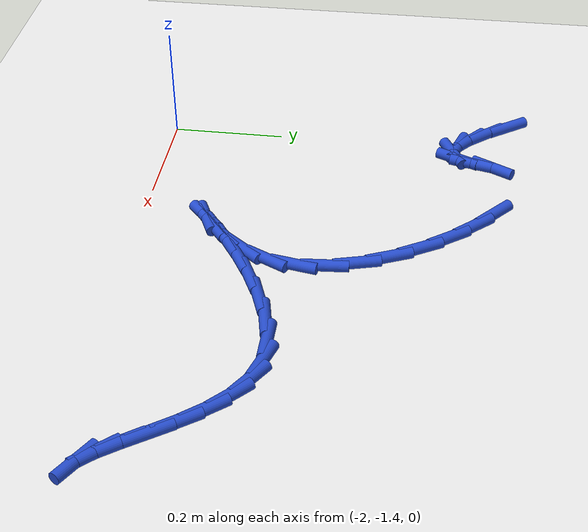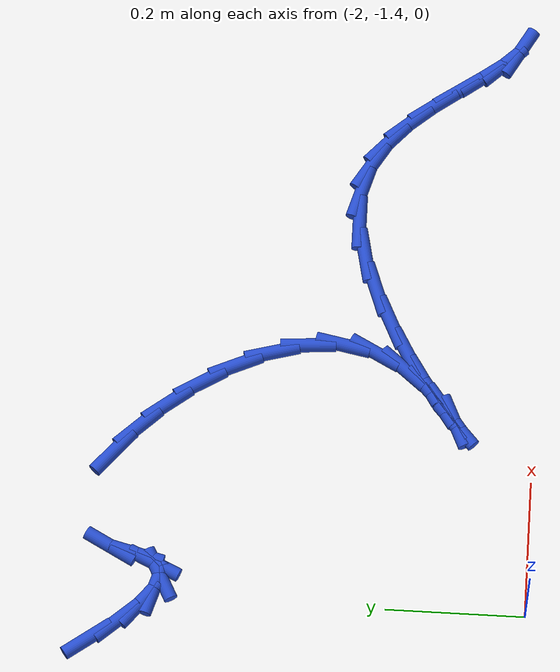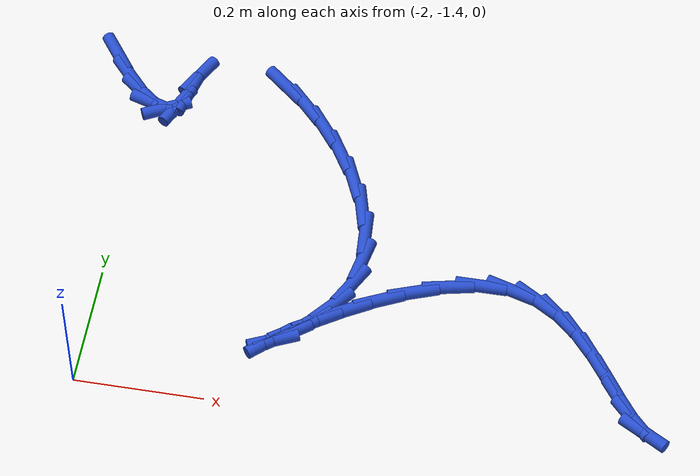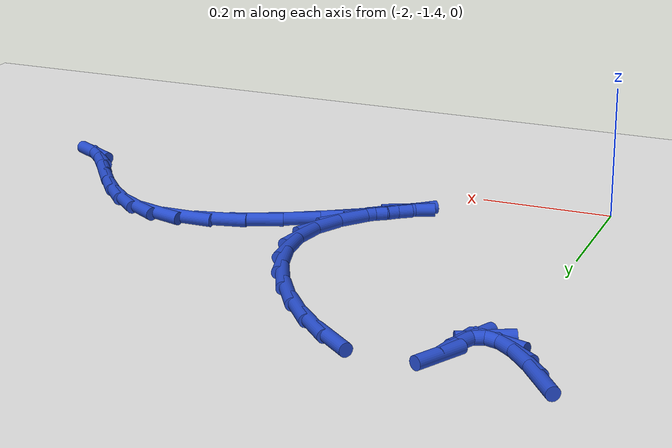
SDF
<sdf version="1.6">
 <world name="default">
  <model name="ground_plane">
   <static>1</static>
   <link name="link">
    <collision name="collision">
     <geometry><plane><normal>0 0 1</normal><size>100 100</size></plane></geometry>
     <surface><friction><ode><mu>100</mu><mu2>50</mu2></ode></friction></surface>
    </collision>
    <visual name="visual">
     <cast_shadows>0</cast_shadows>
     <geometry><plane><normal>0 0 1</normal><size>100 100</size></plane></geometry>
     <material>
      <script><uri>file://media/materials/scripts/gazebo.material</uri><name>Gazebo/WhiteGlow</name></script>
     </material>
    </visual>
   </link>
  </model>
  <model name="line">
   <link name="link_129">
    <pose>-2.068155746802717 -0.7808950212469774 0.01 0 1.57 -0.9432619943298162</pose>
    <collision name="collision">
     <geometry><cylinder><radius>0.01</radius><length>0.08</length></cylinder></geometry>
    </collision>
    <visual name="visual">
     <material>
      <script><name>Gazebo/Blue</name><uri>file://media/materials/scripts/gazebo.material</uri></script>
     </material>
     <geometry><cylinder><radius>0.01</radius><length>0.08</length></cylinder></geometry>
    </visual>
   </link>
   <link name="link_130">
    <pose>-2.039534016211103 -0.820354489716109 0.01 0 1.57 -0.8508665726187289</pose>
    <collision name="collision">
     <geometry><cylinder><radius>0.01</radius><length>0.08</length></cylinder></geometry>
    </collision>
    <visual name="visual">
     <material>
      <script><name>Gazebo/Blue</name><uri>file://media/materials/scripts/gazebo.material</uri></script>
     </material>
     <geometry><cylinder><radius>0.01</radius><length>0.08</length></cylinder></geometry>
    </visual>
   </link>
   <link name="link_131">
    <pose>-2.012798499384259 -0.8508416453978692 0.01 0 1.57 -0.6792693007614086</pose>
    <collision name="collision">
     <geometry><cylinder><radius>0.01</radius><length>0.08</length></cylinder></geometry>
    </collision>
    <visual name="visual">
     <material>
      <script><name>Gazebo/Blue</name><uri>file://media/materials/scripts/gazebo.material</uri></script>
     </material>
     <geometry><cylinder><radius>0.01</radius><length>0.08</length></cylinder></geometry>
    </visual>
   </link>
   <link name="link_132">
    <pose>-1.988683843865874 -0.8703131098652603 0.01 0 1.57 -0.2995971571060755</pose>
    <collision name="collision">
     <geometry><cylinder><radius>0.01</radius><length>0.08</length></cylinder></geometry>
    </collision>
    <visual name="visual">
     <material>
      <script><name>Gazebo/Blue</name><uri>file://media/materials/scripts/gazebo.material</uri></script>
     </material>
     <geometry><cylinder><radius>0.01</radius><length>0.08</length></cylinder></geometry>
    </visual>
   </link>
   <link name="link_133">
    <pose>-1.967924697199631 -0.8767255046912864 0.01 0 1.57 0.48056603940495984</pose>
    <collision name="collision">
     <geometry><cylinder><radius>0.01</radius><length>0.08</length></cylinder></geometry>
    </collision>
    <visual name="visual">
     <material>
      <script><name>Gazebo/Blue</name><uri>file://media/materials/scripts/gazebo.material</uri></script>
     </material>
     <geometry><cylinder><radius>0.01</radius><length>0.08</length></cylinder></geometry>
    </visual>
   </link>
   <link name="link_134">
    <pose>-1.9512557069292151 -0.8680354514489506 0.01 0 1.57 1.1401618923272687</pose>
    <collision name="collision">
     <geometry><cylinder><radius>0.01</radius><length>0.08</length></cylinder></geometry>
    </collision>
    <visual name="visual">
     <material>
      <script><name>Gazebo/Blue</name><uri>file://media/materials/scripts/gazebo.material</uri></script>
     </material>
     <geometry><cylinder><radius>0.01</radius><length>0.08</length></cylinder></geometry>
    </visual>
   </link>
   <link name="link_135">
    <pose>-1.9393998365117788 -0.8422275474461457 0.01 0 1.57 1.3274067116209205</pose>
    <collision name="collision">
     <geometry><cylinder><radius>0.01</radius><length>0.08</length></cylinder></geometry>
    </collision>
    <visual name="visual">
     <material>
      <script><name>Gazebo/Blue</name><uri>file://media/materials/scripts/gazebo.material</uri></script>
     </material>
     <geometry><cylinder><radius>0.01</radius><length>0.08</length></cylinder></geometry>
    </visual>
   </link>
   <link name="link_136">
    <pose>-1.9300449175791057 -0.8045535428873222 0.01 0 1.57 1.0818984571432808</pose>
    <collision name="collision">
     <geometry><cylinder><radius>0.01</radius><length>0.08</length></cylinder></geometry>
    </collision>
    <visual name="visual">
     <material>
      <script><name>Gazebo/Blue</name><uri>file://media/materials/scripts/gazebo.material</uri></script>
     </material>
     <geometry><cylinder><radius>0.01</radius><length>0.08</length></cylinder></geometry>
    </visual>
   </link>
   <link name="link_141">
    <pose>-1.7883736617903674 -0.7996904093643863 0.01 0 1.57 -0.7064279523859108</pose>
    <collision name="collision">
     <geometry><cylinder><radius>0.01</radius><length>0.08</length></cylinder></geometry>
    </collision>
    <visual name="visual">
     <material>
      <script><name>Gazebo/Blue</name><uri>file://media/materials/scripts/gazebo.material</uri></script>
     </material>
     <geometry><cylinder><radius>0.01</radius><length>0.08</length></cylinder></geometry>
    </visual>
   </link>
   <link name="link_142">
    <pose>-1.7501179124479238 -0.832335440868141 0.01 0 1.57 -0.8203905316034774</pose>
    <collision name="collision">
     <geometry><cylinder><radius>0.01</radius><length>0.08</length></cylinder></geometry>
    </collision>
    <visual name="visual">
     <material>
      <script><name>Gazebo/Blue</name><uri>file://media/materials/scripts/gazebo.material</uri></script>
     </material>
     <geometry><cylinder><radius>0.01</radius><length>0.08</length></cylinder></geometry>
    </visual>
   </link>
   <link name="link_143">
    <pose>-1.7129603205957828 -0.8721889333760684 0.01 0 1.57 -0.9250326209474397</pose>
    <collision name="collision">
     <geometry><cylinder><radius>0.01</radius><length>0.08</length></cylinder></geometry>
    </collision>
    <visual name="visual">
     <material>
      <script><name>Gazebo/Blue</name><uri>file://media/materials/scripts/gazebo.material</uri></script>
     </material>
     <geometry><cylinder><radius>0.01</radius><length>0.08</length></cylinder></geometry>
    </visual>
   </link>
   <link name="link_144">
    <pose>-1.6787900776741718 -0.9175351431476707 0.01 0 1.57 -1.0330786045687435</pose>
    <collision name="collision">
     <geometry><cylinder><radius>0.01</radius><length>0.08</length></cylinder></geometry>
    </collision>
    <visual name="visual">
     <material>
      <script><name>Gazebo/Blue</name><uri>file://media/materials/scripts/gazebo.material</uri></script>
     </material>
     <geometry><cylinder><radius>0.01</radius><length>0.08</length></cylinder></geometry>
    </visual>
   </link>
   <link name="link_145">
    <pose>-1.6494963751233207 -0.9666583264424471 0.01 0 1.57 -1.1561776788492135</pose>
    <collision name="collision">
     <geometry><cylinder><radius>0.01</radius><length>0.08</length></cylinder></geometry>
    </collision>
    <visual name="visual">
     <material>
      <script><name>Gazebo/Blue</name><uri>file://media/materials/scripts/gazebo.material</uri></script>
     </material>
     <geometry><cylinder><radius>0.01</radius><length>0.08</length></cylinder></geometry>
    </visual>
   </link>
   <link name="link_146">
    <pose>-1.6269684043834562 -1.0178427395198997 0.01 0 1.57 -1.3078085957483774</pose>
    <collision name="collision">
     <geometry><cylinder><radius>0.01</radius><length>0.08</length></cylinder></geometry>
    </collision>
    <visual name="visual">
     <material>
      <script><name>Gazebo/Blue</name><uri>file://media/materials/scripts/gazebo.material</uri></script>
     </material>
     <geometry><cylinder><radius>0.01</radius><length>0.08</length></cylinder></geometry>
    </visual>
   </link>
   <link name="link_147">
    <pose>-1.613095356894807 -1.0693726386395297 0.01 0 1.57 -1.50452675032031</pose>
    <collision name="collision">
     <geometry><cylinder><radius>0.01</radius><length>0.08</length></cylinder></geometry>
    </collision>
    <visual name="visual">
     <material>
      <script><name>Gazebo/Blue</name><uri>file://media/materials/scripts/gazebo.material</uri></script>
     </material>
     <geometry><cylinder><radius>0.01</radius><length>0.08</length></cylinder></geometry>
    </visual>
   </link>
   <link name="link_148">
    <pose>-1.6097664240976004 -1.1195322800608394 0.01 0 1.57 1.379748114828638</pose>
    <collision name="collision">
     <geometry><cylinder><radius>0.01</radius><length>0.08</length></cylinder></geometry>
    </collision>
    <visual name="visual">
     <material>
      <script><name>Gazebo/Blue</name><uri>file://media/materials/scripts/gazebo.material</uri></script>
     </material>
     <geometry><cylinder><radius>0.01</radius><length>0.08</length></cylinder></geometry>
    </visual>
   </link>
   <link name="link_149">
    <pose>-1.6188707974320649 -1.1666059200433279 0.01 0 1.57 1.0922556707667161</pose>
    <collision name="collision">
     <geometry><cylinder><radius>0.01</radius><length>0.08</length></cylinder></geometry>
    </collision>
    <visual name="visual">
     <material>
      <script><name>Gazebo/Blue</name><uri>file://media/materials/scripts/gazebo.material</uri></script>
     </material>
     <geometry><cylinder><radius>0.01</radius><length>0.08</length></cylinder></geometry>
    </visual>
   </link>
   <link name="link_150">
    <pose>-1.6407646037267352 -1.208810248003043 0.01 0 1.57 0.8873510068966004</pose>
    <collision name="collision">
     <geometry><cylinder><radius>0.01</radius><length>0.08</length></cylinder></geometry>
    </collision>
    <visual name="visual">
     <material>
      <script><name>Gazebo/Blue</name><uri>file://media/materials/scripts/gazebo.material</uri></script>
     </material>
     <geometry><cylinder><radius>0.01</radius><length>0.08</length></cylinder></geometry>
    </visual>
   </link>
   <link name="link_151">
    <pose>-1.6694904414755976 -1.2440836968641868 0.01 0 1.57 0.7528165470442022</pose>
    <collision name="collision">
     <geometry><cylinder><radius>0.01</radius><length>0.08</length></cylinder></geometry>
    </collision>
    <visual name="visual">
     <material>
      <script><name>Gazebo/Blue</name><uri>file://media/materials/scripts/gazebo.material</uri></script>
     </material>
     <geometry><cylinder><radius>0.01</radius><length>0.08</length></cylinder></geometry>
    </visual>
   </link>
   <link name="link_152">
    <pose>-1.6974658780320442 -1.2702930794614704 0.01 0 1.57 0.6525676161514408</pose>
    <collision name="collision">
     <geometry><cylinder><radius>0.01</radius><length>0.08</length></cylinder></geometry>
    </collision>
    <visual name="visual">
     <material>
      <script><name>Gazebo/Blue</name><uri>file://media/materials/scripts/gazebo.material</uri></script>
     </material>
     <geometry><cylinder><radius>0.01</radius><length>0.08</length></cylinder></geometry>
    </visual>
   </link>
   <link name="link_153">
    <pose>-1.7171084793042612 -1.28530520856591 0.01 0 1.57 0.4322452511326625</pose>
    <collision name="collision">
     <geometry><cylinder><radius>0.01</radius><length>0.08</length></cylinder></geometry>
    </collision>
    <visual name="visual">
     <material>
      <script><name>Gazebo/Blue</name><uri>file://media/materials/scripts/gazebo.material</uri></script>
     </material>
     <geometry><cylinder><radius>0.01</radius><length>0.08</length></cylinder></geometry>
    </visual>
   </link>
   <link name="link_154">
    <pose>-1.7220311502952086 -1.2875762401544035 0.01 0 1.57 0.737047199460522</pose>
    <collision name="collision">
     <geometry><cylinder><radius>0.01</radius><length>0.08</length></cylinder></geometry>
    </collision>
    <visual name="visual">
     <material>
      <script><name>Gazebo/Blue</name><uri>file://media/materials/scripts/gazebo.material</uri></script>
     </material>
     <geometry><cylinder><radius>0.01</radius><length>0.08</length></cylinder></geometry>
    </visual>
   </link>
   <link name="link_155">
    <pose>-1.7123014552060543 -1.2787446987563138 0.01 0 1.57 0.6610960760574095</pose>
    <collision name="collision">
     <geometry><cylinder><radius>0.01</radius><length>0.08</length></cylinder></geometry>
    </collision>
    <visual name="visual">
     <material>
      <script><name>Gazebo/Blue</name><uri>file://media/materials/scripts/gazebo.material</uri></script>
     </material>
     <geometry><cylinder><radius>0.01</radius><length>0.08</length></cylinder></geometry>
    </visual>
   </link>
   <link name="link_156">
    <pose>-1.6901558091400612 -1.2615184268454316 0.01 0 1.57 0.6166368282308212</pose>
    <collision name="collision">
     <geometry><cylinder><radius>0.01</radius><length>0.08</length></cylinder></geometry>
    </collision>
    <visual name="visual">
     <material>
      <script><name>Gazebo/Blue</name><uri>file://media/materials/scripts/gazebo.material</uri></script>
     </material>
     <geometry><cylinder><radius>0.01</radius><length>0.08</length></cylinder></geometry>
    </visual>
   </link>
   <link name="link_157">
    <pose>-1.6578322375197043 -1.2386060608381972 0.01 0 1.57 0.5714457843052021</pose>
    <collision name="collision">
     <geometry><cylinder><radius>0.01</radius><length>0.08</length></cylinder></geometry>
    </collision>
    <visual name="visual">
     <material>
      <script><name>Gazebo/Blue</name><uri>file://media/materials/scripts/gazebo.material</uri></script>
     </material>
     <geometry><cylinder><radius>0.01</radius><length>0.08</length></cylinder></geometry>
    </visual>
   </link>
   <link name="link_158">
    <pose>-1.6175687657674593 -1.2127162371510507 0.01 0 1.57 0.5173851280946603</pose>
    <collision name="collision">
     <geometry><cylinder><radius>0.01</radius><length>0.08</length></cylinder></geometry>
    </collision>
    <visual name="visual">
     <material>
      <script><name>Gazebo/Blue</name><uri>file://media/materials/scripts/gazebo.material</uri></script>
     </material>
     <geometry><cylinder><radius>0.01</radius><length>0.08</length></cylinder></geometry>
    </visual>
   </link>
   <link name="link_159">
    <pose>-1.5716034193058002 -1.186557592200431 0.01 0 1.57 0.44740184226027585</pose>
    <collision name="collision">
     <geometry><cylinder><radius>0.01</radius><length>0.08</length></cylinder></geometry>
    </collision>
    <visual name="visual">
     <material>
      <script><name>Gazebo/Blue</name><uri>file://media/materials/scripts/gazebo.material</uri></script>
     </material>
     <geometry><cylinder><radius>0.01</radius><length>0.08</length></cylinder></geometry>
    </visual>
   </link>
   <link name="link_160">
    <pose>-1.522174223557203 -1.1628387624027787 0.01 0 1.57 0.3513903433111533</pose>
    <collision name="collision">
     <geometry><cylinder><radius>0.01</radius><length>0.08</length></cylinder></geometry>
    </collision>
    <visual name="visual">
     <material>
      <script><name>Gazebo/Blue</name><uri>file://media/materials/scripts/gazebo.material</uri></script>
     </material>
     <geometry><cylinder><radius>0.01</radius><length>0.08</length></cylinder></geometry>
    </visual>
   </link>
   <link name="link_161">
    <pose>-1.4715192039441418 -1.1442683841745334 0.01 0 1.57 0.2125478116816369</pose>
    <collision name="collision">
     <geometry><cylinder><radius>0.01</radius><length>0.08</length></cylinder></geometry>
    </collision>
    <visual name="visual">
     <material>
      <script><name>Gazebo/Blue</name><uri>file://media/materials/scripts/gazebo.material</uri></script>
     </material>
     <geometry><cylinder><radius>0.01</radius><length>0.08</length></cylinder></geometry>
    </visual>
   </link>
   <link name="link_162">
    <pose>-1.421876385889091 -1.1335550939321344 0.01 0 1.57 0.0031807954466457756</pose>
    <collision name="collision">
     <geometry><cylinder><radius>0.01</radius><length>0.08</length></cylinder></geometry>
    </collision>
    <visual name="visual">
     <material>
      <script><name>Gazebo/Blue</name><uri>file://media/materials/scripts/gazebo.material</uri></script>
     </material>
     <geometry><cylinder><radius>0.01</radius><length>0.08</length></cylinder></geometry>
    </visual>
   </link>
   <link name="link_163">
    <pose>-1.3754837948145278 -1.1334075280920222 0.01 0 1.57 -0.2866077588192253</pose>
    <collision name="collision">
     <geometry><cylinder><radius>0.01</radius><length>0.08</length></cylinder></geometry>
    </collision>
    <visual name="visual">
     <material>
      <script><name>Gazebo/Blue</name><uri>file://media/materials/scripts/gazebo.material</uri></script>
     </material>
     <geometry><cylinder><radius>0.01</radius><length>0.08</length></cylinder></geometry>
    </visual>
   </link>
   <link name="link_164">
    <pose>-1.3341089822968768 -1.1456016033428222 0.01 0 1.57 -0.55285705616317</pose>
    <collision name="collision">
     <geometry><cylinder><radius>0.01</radius><length>0.08</length></cylinder></geometry>
    </collision>
    <visual name="visual">
     <material>
      <script><name>Gazebo/Blue</name><uri>file://media/materials/scripts/gazebo.material</uri></script>
     </material>
     <geometry><cylinder><radius>0.01</radius><length>0.08</length></cylinder></geometry>
    </visual>
   </link>
   <link name="link_165">
    <pose>-1.2976082377012996 -1.1681241373946698 0.01 0 1.57 -0.747112514760433</pose>
    <collision name="collision">
     <geometry><cylinder><radius>0.01</radius><length>0.08</length></cylinder></geometry>
    </collision>
    <visual name="visual">
     <material>
      <script><name>Gazebo/Blue</name><uri>file://media/materials/scripts/gazebo.material</uri></script>
     </material>
     <geometry><cylinder><radius>0.01</radius><length>0.08</length></cylinder></geometry>
    </visual>
   </link>
   <link name="link_166">
    <pose>-1.2653525789292668 -1.197999891785334 0.01 0 1.57 -0.8744273750602962</pose>
    <collision name="collision">
     <geometry><cylinder><radius>0.01</radius><length>0.08</length></cylinder></geometry>
    </collision>
    <visual name="visual">
     <material>
      <script><name>Gazebo/Blue</name><uri>file://media/materials/scripts/gazebo.material</uri></script>
     </material>
     <geometry><cylinder><radius>0.01</radius><length>0.08</length></cylinder></geometry>
    </visual>
   </link>
   <link name="link_167">
    <pose>-1.236713023816551 -1.2322536279223277 0.01 0 1.57 -0.9471470569223933</pose>
    <collision name="collision">
     <geometry><cylinder><radius>0.01</radius><length>0.08</length></cylinder></geometry>
    </collision>
    <visual name="visual">
     <material>
      <script><name>Gazebo/Blue</name><uri>file://media/materials/scripts/gazebo.material</uri></script>
     </material>
     <geometry><cylinder><radius>0.01</radius><length>0.08</length></cylinder></geometry>
    </visual>
   </link>
   <link name="link_168">
    <pose>-1.21106059019892 -1.2679101072131653 0.01 0 1.57 -0.9712724047003959</pose>
    <collision name="collision">
     <geometry><cylinder><radius>0.01</radius><length>0.08</length></cylinder></geometry>
    </collision>
    <visual name="visual">
     <material>
      <script><name>Gazebo/Blue</name><uri>file://media/materials/scripts/gazebo.material</uri></script>
     </material>
     <geometry><cylinder><radius>0.01</radius><length>0.08</length></cylinder></geometry>
    </visual>
   </link>
   <link name="link_169">
    <pose>-1.1877662959121449 -1.301994091065361 0.01 0 1.57 -0.9401374112725538</pose>
    <collision name="collision">
     <geometry><cylinder><radius>0.01</radius><length>0.08</length></cylinder></geometry>
    </collision>
    <visual name="visual">
     <material>
      <script><name>Gazebo/Blue</name><uri>file://media/materials/scripts/gazebo.material</uri></script>
     </material>
     <geometry><cylinder><radius>0.01</radius><length>0.08</length></cylinder></geometry>
    </visual>
   </link>
   <link name="link_170">
    <pose>-1.1662011587919943 -1.331530340886429 0.01 0 1.57 -0.8218316400932857</pose>
    <collision name="collision">
     <geometry><cylinder><radius>0.01</radius><length>0.08</length></cylinder></geometry>
    </collision>
    <visual name="visual">
     <material>
      <script><name>Gazebo/Blue</name><uri>file://media/materials/scripts/gazebo.material</uri></script>
     </material>
     <geometry><cylinder><radius>0.01</radius><length>0.08</length></cylinder></geometry>
    </visual>
   </link>
   <link name="link_171">
    <pose>-1.1457361966742399 -1.3535436180838822 0.01 0 1.57 -0.5225355586372479</pose>
    <collision name="collision">
     <geometry><cylinder><radius>0.01</radius><length>0.08</length></cylinder></geometry>
    </collision>
    <visual name="visual">
     <material>
      <script><name>Gazebo/Blue</name><uri>file://media/materials/scripts/gazebo.material</uri></script>
     </material>
     <geometry><cylinder><radius>0.01</radius><length>0.08</length></cylinder></geometry>
    </visual>
   </link>
  </model>
 </world>
</sdf>
